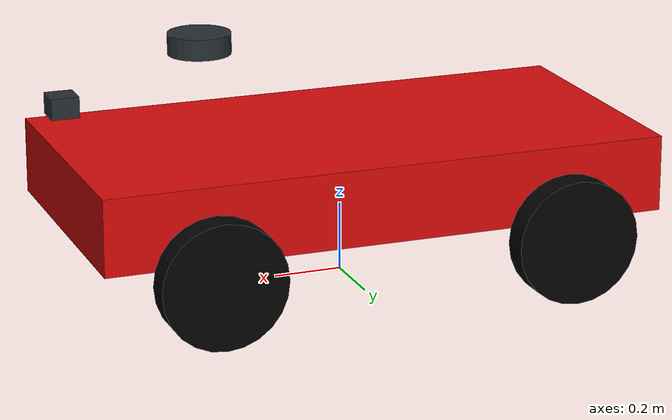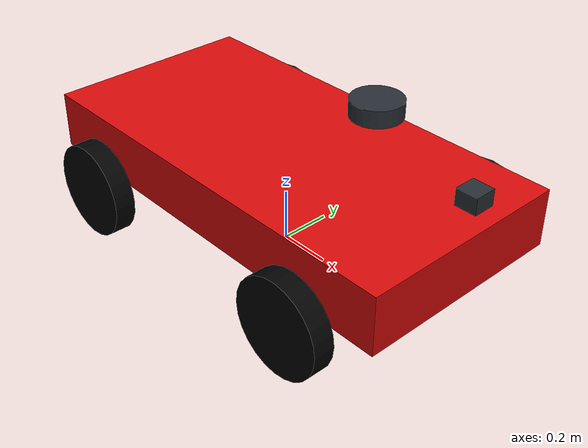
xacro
<?xml version="1.0"?>
<robot name="right_angle_car" xmlns:xacro="http://www.ros.org/wiki/xacro">
  <xacro:property name="pi" value="3.141592653589793"/>
  <xacro:property name="wheel_radius" value="0.18"/>
  <xacro:property name="wheel_width" value="0.08"/>
  <xacro:property name="half_track" value="0.48"/>
  <xacro:property name="front_x" value="0.52"/>
  <xacro:property name="rear_x" value="-0.52"/>

  <material name="body_black">
    <color rgba="0.03 0.035 0.04 1"/>
  </material>
  <material name="body_red">
    <color rgba="0.85 0.04 0.04 1"/>
  </material>
  <material name="sensor_gray">
    <color rgba="0.15 0.18 0.2 1"/>
  </material>
  <material name="rubber">
    <color rgba="0.01 0.01 0.012 1"/>
  </material>

  <link name="base_link">
    <inertial>
      <origin xyz="0 0 0.15"/>
      <mass value="1.0"/>
      <inertia ixx="0.02" ixy="0" ixz="0" iyy="0.02" iyz="0" izz="0.02"/>
    </inertial>
  </link>

  <link name="chassis_link">
    <visual>
      <origin xyz="0 0 0" rpy="0 0 0"/>
      <geometry>
        <box size="1.65 0.82 0.22"/>
      </geometry>
      <material name="body_red"/>
    </visual>
    <collision>
      <origin xyz="0 0 0" rpy="0 0 0"/>
      <geometry>
        <box size="1.65 0.82 0.22"/>
      </geometry>
    </collision>
    <inertial>
      <origin xyz="0 0 0"/>
      <mass value="18.0"/>
      <inertia ixx="1.2" ixy="0" ixz="0" iyy="3.1" iyz="0" izz="3.4"/>
    </inertial>
  </link>

  <joint name="base_to_chassis" type="fixed">
    <parent link="base_link"/>
    <child link="chassis_link"/>
    <origin xyz="0 0 0.32" rpy="0 0 0"/>
  </joint>

  <xacro:macro name="wheel" params="name x y joint_type">
    <link name="${name}_wheel_link">
      <visual>
        <origin xyz="0 0 0" rpy="${pi / 2} 0 0"/>
        <geometry>
          <cylinder radius="${wheel_radius}" length="${wheel_width}"/>
        </geometry>
        <material name="rubber"/>
      </visual>
      <collision>
        <origin xyz="0 0 0" rpy="${pi / 2} 0 0"/>
        <geometry>
          <cylinder radius="${wheel_radius}" length="${wheel_width}"/>
        </geometry>
      </collision>
      <inertial>
        <origin xyz="0 0 0"/>
        <mass value="1.2"/>
        <inertia ixx="0.02" ixy="0" ixz="0" iyy="0.02" iyz="0" izz="0.02"/>
      </inertial>
    </link>
    <joint name="${name}_wheel_joint" type="${joint_type}">
      <parent link="base_link"/>
      <child link="${name}_wheel_link"/>
      <origin xyz="${x} ${y} ${wheel_radius}" rpy="0 0 0"/>
      <axis xyz="0 1 0"/>
      <limit effort="30.0" velocity="40.0"/>
      <dynamics damping="0.05" friction="0.02"/>
    </joint>
  </xacro:macro>

  <xacro:wheel name="left_rear" x="${rear_x}" y="${half_track}" joint_type="continuous"/>
  <xacro:wheel name="right_rear" x="${rear_x}" y="-${half_track}" joint_type="continuous"/>
  <xacro:wheel name="left_front" x="${front_x}" y="${half_track}" joint_type="continuous"/>
  <xacro:wheel name="right_front" x="${front_x}" y="-${half_track}" joint_type="continuous"/>

  <link name="camera_link">
    <visual>
      <geometry>
        <box size="0.08 0.08 0.06"/>
      </geometry>
      <material name="sensor_gray"/>
    </visual>
    <inertial>
      <mass value="0.1"/>
      <inertia ixx="0.0001" ixy="0" ixz="0" iyy="0.0001" iyz="0" izz="0.0001"/>
    </inertial>
  </link>
  <joint name="camera_joint" type="fixed">
    <parent link="base_link"/>
    <child link="camera_link"/>
    <origin xyz="0.82 0 0.58" rpy="0 0 0"/>
  </joint>

  <link name="camera_optical_frame"/>
  <joint name="camera_optical_joint" type="fixed">
    <parent link="camera_link"/>
    <child link="camera_optical_frame"/>
    <origin xyz="0 0 0" rpy="-${pi / 2} 0 -${pi / 2}"/>
  </joint>

  <link name="lidar_link">
    <visual>
      <geometry>
        <cylinder radius="0.09" length="0.06"/>
      </geometry>
      <material name="sensor_gray"/>
    </visual>
    <inertial>
      <mass value="0.25"/>
      <inertia ixx="0.0005" ixy="0" ixz="0" iyy="0.0005" iyz="0" izz="0.0005"/>
    </inertial>
  </link>
  <joint name="lidar_joint" type="fixed">
    <parent link="base_link"/>
    <child link="lidar_link"/>
    <origin xyz="0.42 0 0.72" rpy="0 0 0"/>
  </joint>

  <link name="gps_link"/>
  <joint name="gps_joint" type="fixed">
    <parent link="base_link"/>
    <child link="gps_link"/>
    <origin xyz="-0.25 0 0.78" rpy="0 0 0"/>
  </joint>

  <link name="imu_link"/>
  <joint name="imu_joint" type="fixed">
    <parent link="base_link"/>
    <child link="imu_link"/>
    <origin xyz="0 0 0.36" rpy="0 0 0"/>
  </joint>

  <link name="magnetometer_link"/>
  <joint name="magnetometer_joint" type="fixed">
    <parent link="base_link"/>
    <child link="magnetometer_link"/>
    <origin xyz="0.15 0 0.62" rpy="0 0 0"/>
  </joint>

  <gazebo reference="chassis_link">
    <material>Gazebo/Red</material>
  </gazebo>
  <gazebo reference="left_rear_wheel_link">
    <mu1>1.3</mu1>
    <mu2>1.3</mu2>
    <material>Gazebo/Black</material>
  </gazebo>
  <gazebo reference="right_rear_wheel_link">
    <mu1>1.3</mu1>
    <mu2>1.3</mu2>
    <material>Gazebo/Black</material>
  </gazebo>
  <gazebo reference="left_front_wheel_link">
    <mu1>0.4</mu1>
    <mu2>0.4</mu2>
    <material>Gazebo/Black</material>
  </gazebo>
  <gazebo reference="right_front_wheel_link">
    <mu1>0.4</mu1>
    <mu2>0.4</mu2>
    <material>Gazebo/Black</material>
  </gazebo>

  <gazebo>
    <plugin name="diff_drive_controller" filename="libgazebo_ros_diff_drive.so">
      <ros>
        <remapping>cmd_vel:=/cmd_vel</remapping>
        <remapping>odom:=/sensors/wheel_odom</remapping>
      </ros>
      <left_joint>left_rear_wheel_joint</left_joint>
      <right_joint>right_rear_wheel_joint</right_joint>
      <wheel_separation>0.96</wheel_separation>
      <wheel_diameter>0.36</wheel_diameter>
      <max_wheel_torque>70.0</max_wheel_torque>
      <max_wheel_acceleration>12.0</max_wheel_acceleration>
      <publish_odom>true</publish_odom>
      <publish_odom_tf>false</publish_odom_tf>
      <publish_wheel_tf>true</publish_wheel_tf>
      <odometry_frame>odom</odometry_frame>
      <robot_base_frame>base_link</robot_base_frame>
      <update_rate>50</update_rate>
    </plugin>
  </gazebo>

  <gazebo reference="camera_link">
    <sensor name="front_camera" type="camera">
      <always_on>true</always_on>
      <update_rate>20</update_rate>
      <visualize>true</visualize>
      <camera>
        <horizontal_fov>1.3962634</horizontal_fov>
        <image>
          <width>800</width>
          <height>600</height>
          <format>R8G8B8</format>
        </image>
        <clip>
          <near>0.05</near>
          <far>60.0</far>
        </clip>
      </camera>
      <plugin name="front_camera_controller" filename="libgazebo_ros_camera.so">
        <ros>
          <remapping>image_raw:=/sensors/camera/image_raw</remapping>
          <remapping>camera_info:=/sensors/camera/camera_info</remapping>
        </ros>
        <camera_name>front_camera</camera_name>
        <frame_name>camera_optical_frame</frame_name>
      </plugin>
    </sensor>
  </gazebo>

  <gazebo reference="lidar_link">
    <sensor name="front_lidar" type="ray">
      <always_on>true</always_on>
      <update_rate>15</update_rate>
      <visualize>true</visualize>
      <ray>
        <scan>
          <horizontal>
            <samples>720</samples>
            <resolution>1</resolution>
            <min_angle>-2.35619</min_angle>
            <max_angle>2.35619</max_angle>
          </horizontal>
        </scan>
        <range>
          <min>0.12</min>
          <max>30.0</max>
          <resolution>0.01</resolution>
        </range>
        <noise>
          <type>gaussian</type>
          <mean>0.0</mean>
          <stddev>0.01</stddev>
        </noise>
      </ray>
      <plugin name="front_lidar_controller" filename="libgazebo_ros_ray_sensor.so">
        <ros>
          <namespace>/sensors/lidar</namespace>
          <remapping>~/out:=scan</remapping>
        </ros>
        <output_type>sensor_msgs/LaserScan</output_type>
        <frame_name>lidar_link</frame_name>
      </plugin>
    </sensor>
  </gazebo>

  <gazebo reference="imu_link">
    <sensor name="imu_sensor" type="imu">
      <always_on>true</always_on>
      <update_rate>100</update_rate>
      <visualize>false</visualize>
      <imu>
        <angular_velocity>
          <x><noise type="gaussian"><mean>0.0</mean><stddev>0.002</stddev></noise></x>
          <y><noise type="gaussian"><mean>0.0</mean><stddev>0.002</stddev></noise></y>
          <z><noise type="gaussian"><mean>0.0</mean><stddev>0.002</stddev></noise></z>
        </angular_velocity>
        <linear_acceleration>
          <x><noise type="gaussian"><mean>0.0</mean><stddev>0.03</stddev></noise></x>
          <y><noise type="gaussian"><mean>0.0</mean><stddev>0.03</stddev></noise></y>
          <z><noise type="gaussian"><mean>0.0</mean><stddev>0.03</stddev></noise></z>
        </linear_acceleration>
      </imu>
      <plugin name="imu_controller" filename="libgazebo_ros_imu_sensor.so">
        <ros>
          <namespace>/sensors</namespace>
          <remapping>~/out:=imu/data_raw</remapping>
        </ros>
        <frame_name>imu_link</frame_name>
      </plugin>
    </sensor>
  </gazebo>

  <gazebo reference="gps_link">
    <sensor name="gps_sensor" type="gps">
      <always_on>true</always_on>
      <update_rate>10</update_rate>
      <visualize>false</visualize>
      <gps>
        <position_sensing>
          <horizontal>
            <noise type="gaussian">
              <mean>0.0</mean>
              <stddev>0.35</stddev>
            </noise>
          </horizontal>
          <vertical>
            <noise type="gaussian">
              <mean>0.0</mean>
              <stddev>0.5</stddev>
            </noise>
          </vertical>
        </position_sensing>
      </gps>
      <plugin name="gps_controller" filename="libgazebo_ros_gps_sensor.so">
        <ros>
          <namespace>/sensors</namespace>
          <remapping>~/out:=gps/fix</remapping>
        </ros>
        <frame_name>gps_link</frame_name>
      </plugin>
    </sensor>
  </gazebo>

  <gazebo reference="magnetometer_link">
    <sensor name="magnetometer_sensor" type="magnetometer">
      <always_on>true</always_on>
      <update_rate>30</update_rate>
      <visualize>false</visualize>
      <magnetometer>
        <x><noise type="gaussian"><mean>0.0</mean><stddev>0.000001</stddev></noise></x>
        <y><noise type="gaussian"><mean>0.0</mean><stddev>0.000001</stddev></noise></y>
        <z><noise type="gaussian"><mean>0.0</mean><stddev>0.000001</stddev></noise></z>
      </magnetometer>
      <plugin name="magnetometer_controller" filename="libgazebo_ros_magnetometer.so">
        <ros>
          <namespace>/sensors</namespace>
          <remapping>~/out:=magnetic_field</remapping>
        </ros>
        <frame_name>magnetometer_link</frame_name>
      </plugin>
    </sensor>
  </gazebo>
</robot>
